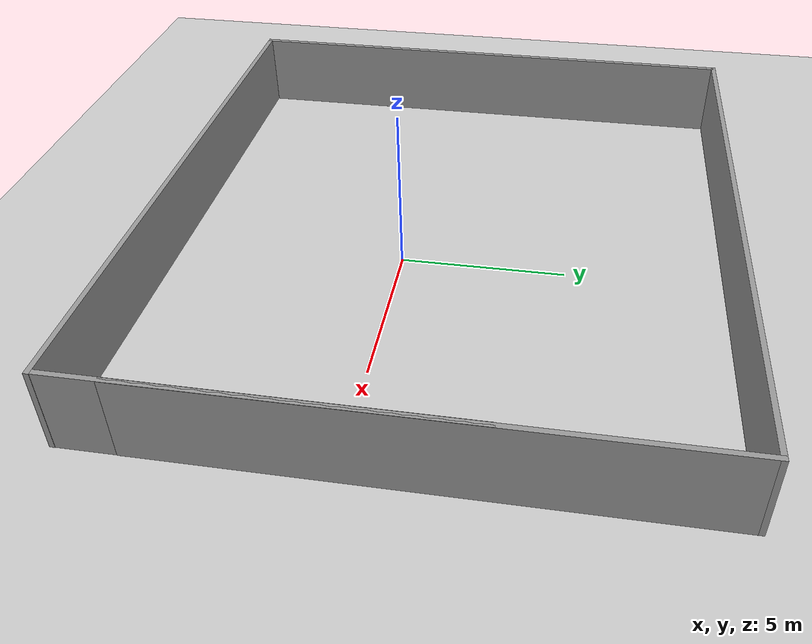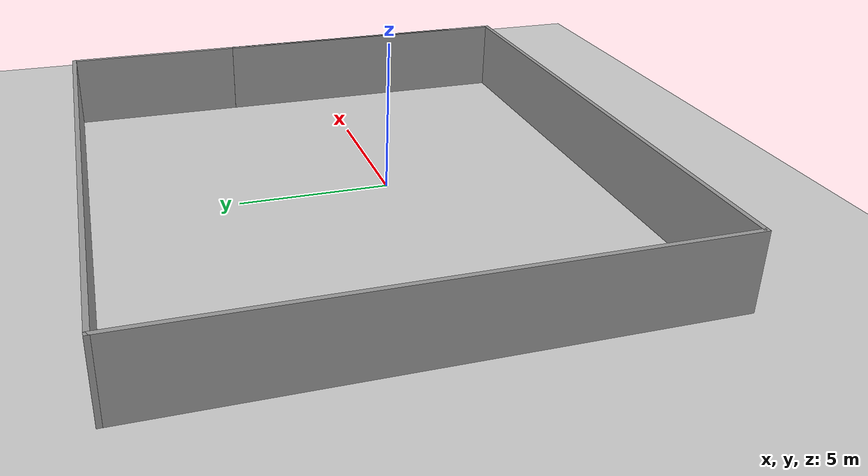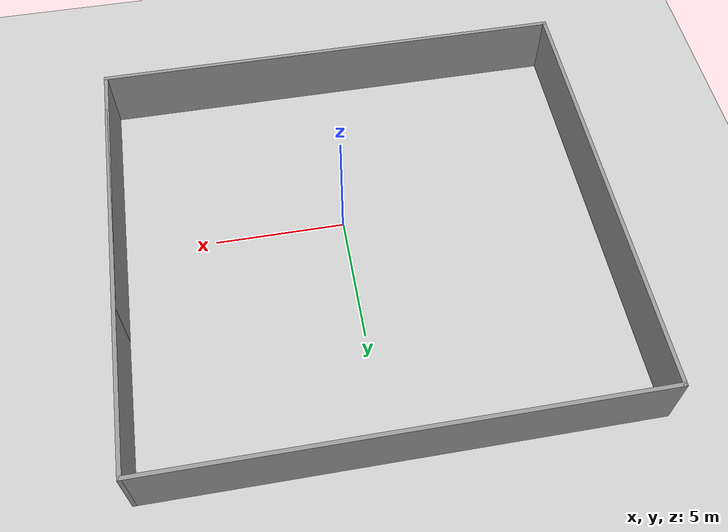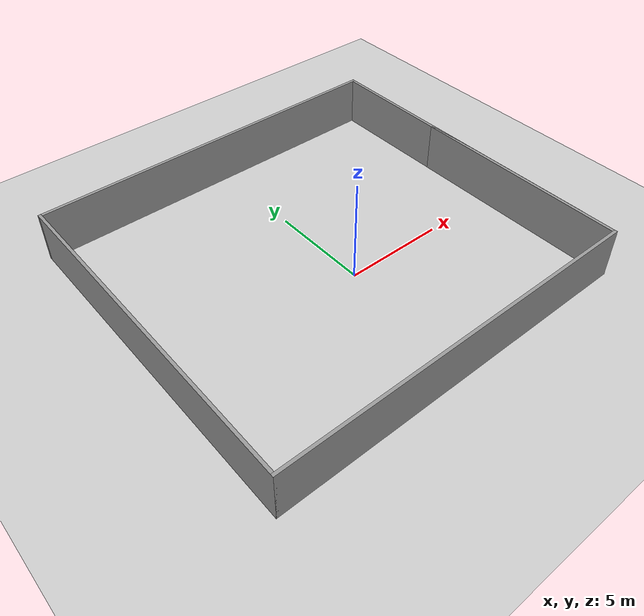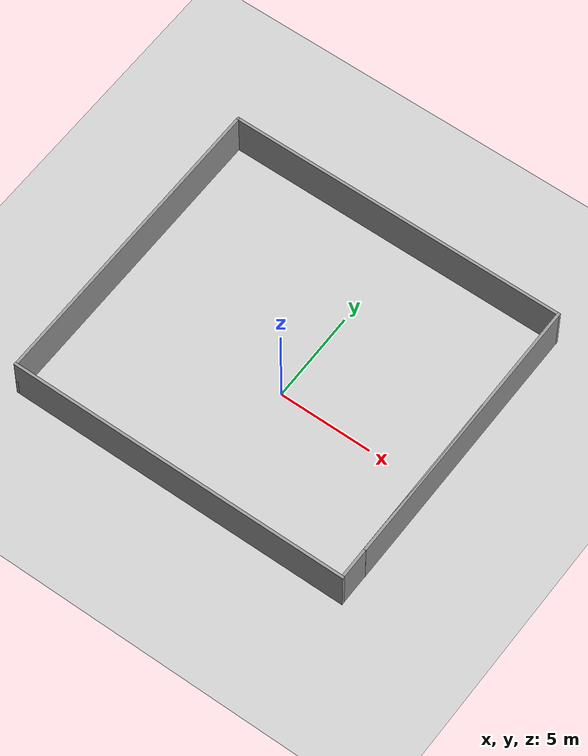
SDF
<sdf version="1.7">
 <world name="default">
  <light name="sun" type="directional">
   <pose>0 0 10 0 -0 0</pose>
   <diffuse>0.8 0.8 0.8 1</diffuse>
   <specular>0.2 0.2 0.2 1</specular>
   <attenuation>
    <range>1000</range>
    <constant>0.9</constant>
    <linear>0.01</linear>
    <quadratic>0.001</quadratic>
   </attenuation>
   <direction>-0.5 0.1 -0.9</direction>
   <spot><inner_angle>0</inner_angle><outer_angle>0</outer_angle><falloff>0</falloff></spot>
  </light>
  <model name="ground_plane">
   <static>1</static>
   <link name="link">
    <collision name="collision">
     <geometry><plane><normal>0 0 1</normal><size>100 100</size></plane></geometry>
     <surface><friction><ode><mu>100</mu><mu2>50</mu2></ode></friction></surface>
    </collision>
    <visual name="visual">
     <cast_shadows>0</cast_shadows>
     <geometry><plane><normal>0 0 1</normal><size>100 100</size></plane></geometry>
     <material>
      <script><uri>file://media/materials/scripts/gazebo.material</uri><name>Gazebo/Grey</name></script>
     </material>
    </visual>
   </link>
  </model>
  <gravity>0 0 -9.8</gravity>
  <magnetic_field>6e-06 2.3e-05 -4.2e-05</magnetic_field>
  <atmosphere type="adiabatic"/>
  <physics type="ode">
   <max_step_size>0.001</max_step_size>
   <real_time_factor>1</real_time_factor>
   <real_time_update_rate>1000</real_time_update_rate>
  </physics>
  <scene><ambient>0.4 0.4 0.4 1</ambient><background>0.7 0.7 0.7 1</background><shadows>1</shadows></scene>
  <audio><device>default</device></audio>
  <spherical_coordinates>
   <surface_model>EARTH_WGS84</surface_model>
   <latitude_deg>0</latitude_deg>
   <longitude_deg>0</longitude_deg>
   <elevation>0</elevation>
   <heading_deg>0</heading_deg>
  </spherical_coordinates>
  <light name="user_directional_light_0" type="directional">
   <pose>-3.85205 -2.13375 1 0 -0 0</pose>
   <diffuse>0.5 0.5 0.5 1</diffuse>
   <specular>0.1 0.1 0.1 1</specular>
   <direction>0.1 0.1 -0.9</direction>
   <attenuation>
    <range>20</range>
    <constant>0.5</constant>
    <linear>0.01</linear>
    <quadratic>0.001</quadratic>
   </attenuation>
   <spot><inner_angle>0</inner_angle><outer_angle>0</outer_angle><falloff>0</falloff></spot>
  </light>
  <light name="user_directional_light_1" type="directional">
   <pose>-0.070215 -2.39227 1 0 -0 0</pose>
   <diffuse>0.5 0.5 0.5 1</diffuse>
   <specular>0.1 0.1 0.1 1</specular>
   <direction>0.1 0.1 -0.9</direction>
   <attenuation>
    <range>20</range>
    <constant>0.5</constant>
    <linear>0.01</linear>
    <quadratic>0.001</quadratic>
   </attenuation>
   <spot><inner_angle>0</inner_angle><outer_angle>0</outer_angle><falloff>0</falloff></spot>
  </light>
  <light name="user_directional_light_2" type="directional">
   <pose>-6.06643 4.19745 1 0 -0 0</pose>
   <diffuse>0.5 0.5 0.5 1</diffuse>
   <specular>0.1 0.1 0.1 1</specular>
   <direction>0.1 0.1 -0.9</direction>
   <attenuation>
    <range>20</range>
    <constant>0.5</constant>
    <linear>0.01</linear>
    <quadratic>0.001</quadratic>
   </attenuation>
   <spot><inner_angle>0</inner_angle><outer_angle>0</outer_angle><falloff>0</falloff></spot>
  </light>
  <light name="user_directional_light_3" type="directional">
   <pose>3.92443 2.06725 1 0 -0 0</pose>
   <diffuse>0.5 0.5 0.5 1</diffuse>
   <specular>0.1 0.1 0.1 1</specular>
   <direction>0.1 0.1 -0.9</direction>
   <attenuation>
    <range>20</range>
    <constant>0.5</constant>
    <linear>0.01</linear>
    <quadratic>0.001</quadratic>
   </attenuation>
   <spot><inner_angle>0</inner_angle><outer_angle>0</outer_angle><falloff>0</falloff></spot>
  </light>
  <light name="user_directional_light_4" type="directional">
   <pose>2.16386 0.236789 1 0 -0 0</pose>
   <diffuse>0.5 0.5 0.5 1</diffuse>
   <specular>0.1 0.1 0.1 1</specular>
   <direction>0.1 0.1 -0.9</direction>
   <attenuation>
    <range>20</range>
    <constant>0.5</constant>
    <linear>0.01</linear>
    <quadratic>0.001</quadratic>
   </attenuation>
   <spot><inner_angle>0</inner_angle><outer_angle>0</outer_angle><falloff>0</falloff></spot>
  </light>
  <light name="user_directional_light_5" type="directional">
   <pose>-3.64667 -0.882376 1 0 -0 0</pose>
   <diffuse>0.5 0.5 0.5 1</diffuse>
   <specular>0.1 0.1 0.1 1</specular>
   <direction>0.1 0.1 -0.9</direction>
   <attenuation>
    <range>20</range>
    <constant>0.5</constant>
    <linear>0.01</linear>
    <quadratic>0.001</quadratic>
   </attenuation>
   <spot><inner_angle>0</inner_angle><outer_angle>0</outer_angle><falloff>0</falloff></spot>
  </light>
  <light name="user_directional_light_6" type="directional">
   <pose>4.89497 -3.09271 1 0 -0 0</pose>
   <diffuse>0.5 0.5 0.5 1</diffuse>
   <specular>0.1 0.1 0.1 1</specular>
   <direction>0.1 0.1 -0.9</direction>
   <attenuation>
    <range>20</range>
    <constant>0.5</constant>
    <linear>0.01</linear>
    <quadratic>0.001</quadratic>
   </attenuation>
   <spot><inner_angle>0</inner_angle><outer_angle>0</outer_angle><falloff>0</falloff></spot>
  </light>
  <light name="user_directional_light_7" type="directional">
   <pose>-8.99379 -1.43183 1 0 -0 0</pose>
   <diffuse>0.5 0.5 0.5 1</diffuse>
   <specular>0.1 0.1 0.1 1</specular>
   <direction>0.1 0.1 -0.9</direction>
   <attenuation>
    <range>20</range>
    <constant>0.5</constant>
    <linear>0.01</linear>
    <quadratic>0.001</quadratic>
   </attenuation>
   <spot><inner_angle>0</inner_angle><outer_angle>0</outer_angle><falloff>0</falloff></spot>
  </light>
  <light name="user_directional_light_8" type="directional">
   <pose>-4.47359 6.54999 1 0 -0 0</pose>
   <diffuse>0.5 0.5 0.5 1</diffuse>
   <specular>0.1 0.1 0.1 1</specular>
   <direction>0.1 0.1 -0.9</direction>
   <attenuation>
    <range>20</range>
    <constant>0.5</constant>
    <linear>0.01</linear>
    <quadratic>0.001</quadratic>
   </attenuation>
   <spot><inner_angle>0</inner_angle><outer_angle>0</outer_angle><falloff>0</falloff></spot>
  </light>
  <light name="user_directional_light_9" type="directional">
   <pose>3.24846 9.05344 1 0 -0 0</pose>
   <diffuse>0.5 0.5 0.5 1</diffuse>
   <specular>0.1 0.1 0.1 1</specular>
   <direction>0.1 0.1 -0.9</direction>
   <attenuation>
    <range>20</range>
    <constant>0.5</constant>
    <linear>0.01</linear>
    <quadratic>0.001</quadratic>
   </attenuation>
   <spot><inner_angle>0</inner_angle><outer_angle>0</outer_angle><falloff>0</falloff></spot>
  </light>
  <light name="user_directional_light_10" type="directional">
   <pose>-78.226 100.892 1 0 -0 0</pose>
   <diffuse>0.5 0.5 0.5 1</diffuse>
   <specular>0.1 0.1 0.1 1</specular>
   <direction>0.1 0.1 -0.9</direction>
   <attenuation>
    <range>20</range>
    <constant>0.5</constant>
    <linear>0.01</linear>
    <quadratic>0.001</quadratic>
   </attenuation>
   <spot><inner_angle>0</inner_angle><outer_angle>0</outer_angle><falloff>0</falloff></spot>
  </light>
  <model name="wall">
   <pose>-0.616391 1.37146 0 0 -0 0</pose>
   <link name="Wall_10">
    <collision name="Wall_10_Collision">
     <geometry><box><size>15.25 0.15 2.5</size></box></geometry>
     <pose>0 0 1.25 0 -0 0</pose>
    </collision>
    <visual name="Wall_10_Visual">
     <pose>0 0 1.25 0 -0 0</pose>
     <geometry><box><size>15.25 0.15 2.5</size></box></geometry>
     <material>
      <script><uri>file://media/materials/scripts/gazebo.material</uri><name>Gazebo/Grey</name></script>
      <ambient>1 1 1 1</ambient>
     </material>
     <meta><layer>0</layer></meta>
    </visual>
    <pose>9.175 0.875 0 0 -0 1.5708</pose>
   </link>
   <link name="Wall_11">
    <collision name="Wall_11_Collision">
     <geometry><box><size>18.5 0.15 2.5</size></box></geometry>
     <pose>0 0 1.25 0 -0 0</pose>
    </collision>
    <visual name="Wall_11_Visual">
     <pose>0 0 1.25 0 -0 0</pose>
     <geometry><box><size>18.5 0.15 2.5</size></box></geometry>
     <material>
      <script><uri>file://media/materials/scripts/gazebo.material</uri><name>Gazebo/Grey</name></script>
      <ambient>1 1 1 1</ambient>
     </material>
     <meta><layer>0</layer></meta>
    </visual>
    <pose>0 8.425 0 0 -0 3.14159</pose>
   </link>
   <link name="Wall_12">
    <collision name="Wall_12_Collision">
     <geometry><box><size>17 0.15 2.5</size></box></geometry>
     <pose>0 0 1.25 0 -0 0</pose>
    </collision>
    <visual name="Wall_12_Visual">
     <pose>0 0 1.25 0 -0 0</pose>
     <geometry><box><size>17 0.15 2.5</size></box></geometry>
     <material>
      <script><uri>file://media/materials/scripts/gazebo.material</uri><name>Gazebo/Grey</name></script>
      <ambient>1 1 1 1</ambient>
     </material>
     <meta><layer>0</layer></meta>
    </visual>
    <pose>-9.175 -0 0 0 -0 -1.5708</pose>
   </link>
   <link name="Wall_13">
    <collision name="Wall_13_Collision">
     <geometry><box><size>18.5 0.15 2.5</size></box></geometry>
     <pose>0 0 1.25 0 -0 0</pose>
    </collision>
    <visual name="Wall_13_Visual">
     <pose>0 0 1.25 0 -0 0</pose>
     <geometry><box><size>18.5 0.15 2.5</size></box></geometry>
     <material>
      <script><uri>file://media/materials/scripts/gazebo.material</uri><name>Gazebo/Grey</name></script>
      <ambient>1 1 1 1</ambient>
     </material>
     <meta><layer>0</layer></meta>
    </visual>
    <pose>0 -8.425 0 0 -0 0</pose>
   </link>
   <link name="Wall_6">
    <collision name="Wall_6_Collision">
     <geometry><box><size>10.75 0.15 2.5</size></box></geometry>
     <pose>0 0 1.25 0 -0 0</pose>
    </collision>
    <visual name="Wall_6_Visual">
     <pose>0 0 1.25 0 -0 0</pose>
     <geometry><box><size>10.75 0.15 2.5</size></box></geometry>
     <material>
      <script><uri>file://media/materials/scripts/gazebo.material</uri><name>Gazebo/Grey</name></script>
      <ambient>1 1 1 1</ambient>
     </material>
     <meta><layer>0</layer></meta>
    </visual>
    <pose>9.1676 -2.9866 0 0 -0 1.5708</pose>
   </link>
   <static>1</static>
  </model>
 </world>
</sdf>
